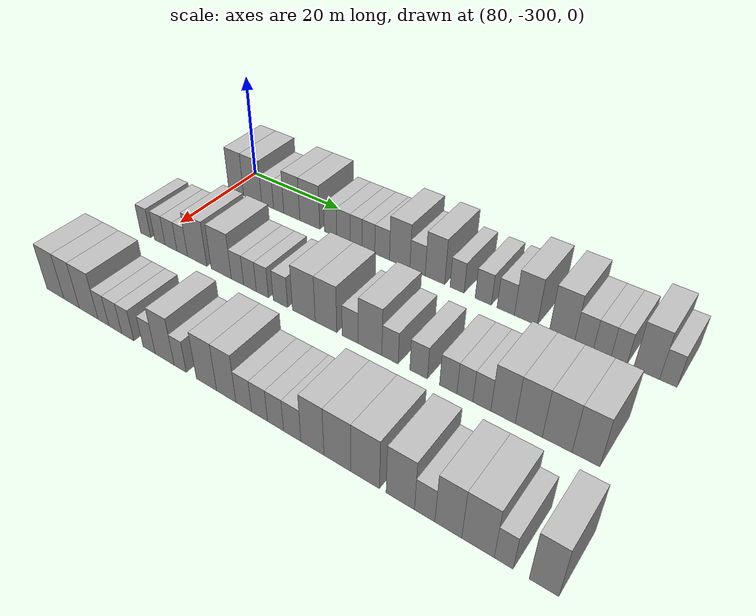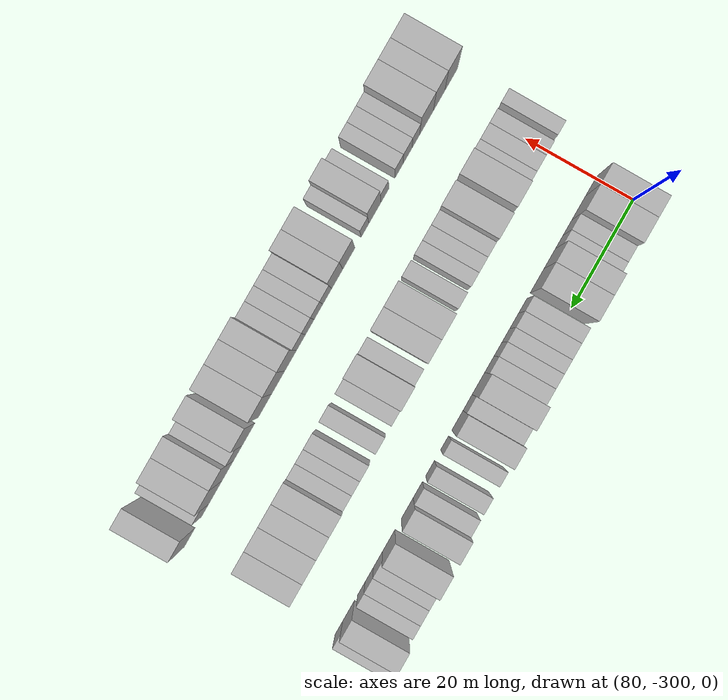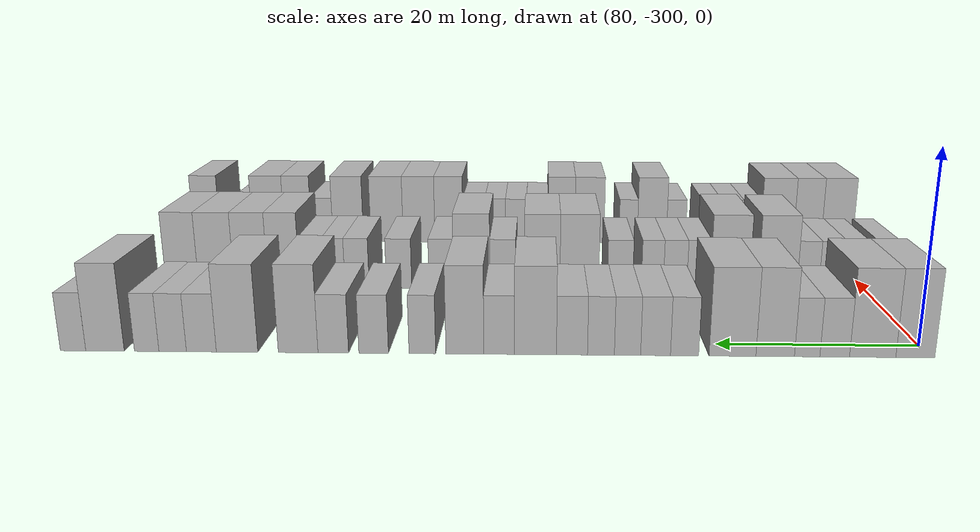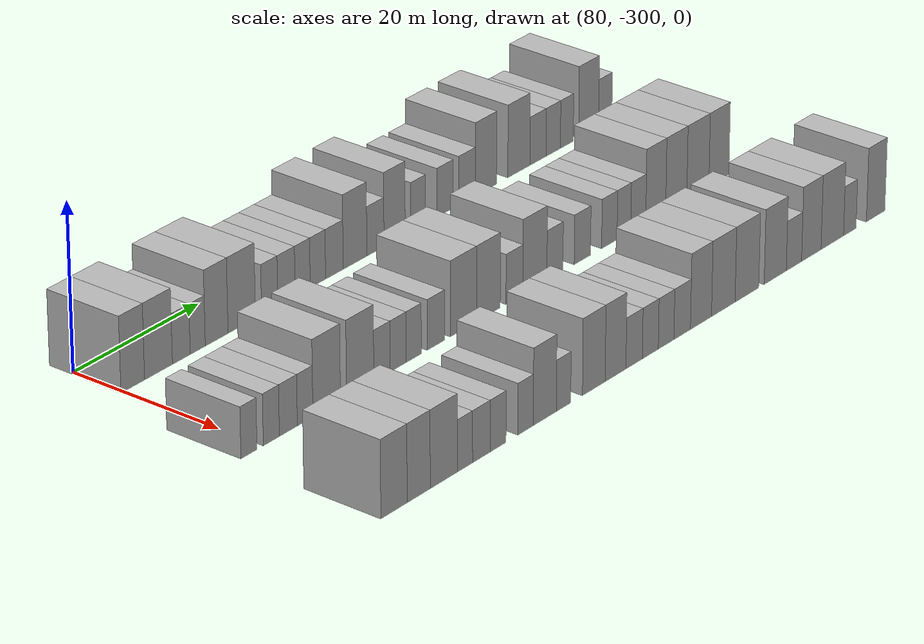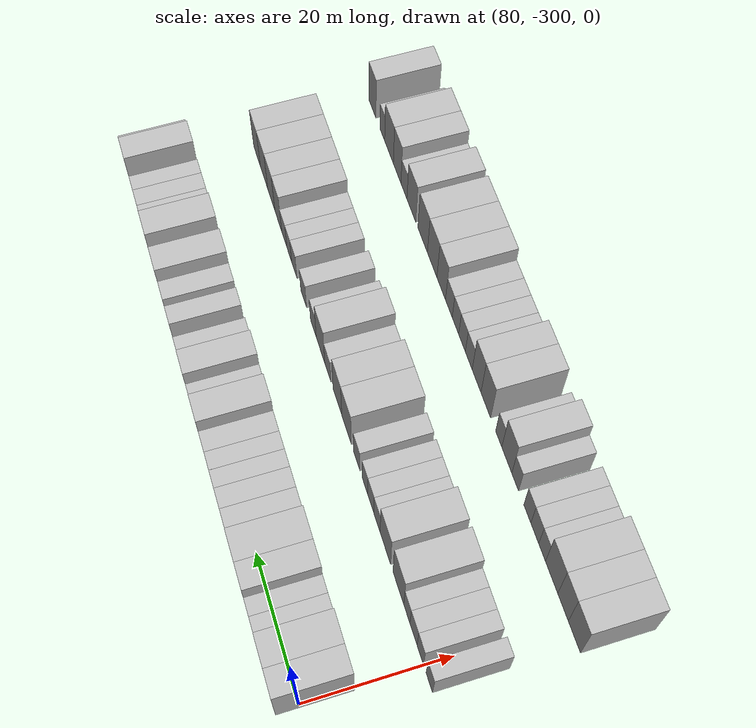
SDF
<sdf version="1.6">
 <world name="default">
  <model name="building_556">
   <static>1</static>
   <pose>82.0000 -298.5609 0 0.000000 0.000000 0.000000</pose>
   <link name="link">
    <pose>0 0 4.50 0 0 0</pose>
    <collision name="collision"><geometry><box><size>10.0000 3.7217 9.0000</size></box></geometry></collision>
    <visual name="visual">
     <cast_shadows>0</cast_shadows>
     <geometry><box><size>10.0000 3.7217 9.0000</size></box></geometry>
     <material>
      <script>
       <uri>model://HANNAS_wall/materials/scripts</uri>
       <uri>model://HANNAS_wall/materials/textures</uri>
       <name>vrc/HANNAS_wall</name>
      </script>
     </material>
    </visual>
   </link>
  </model>
  <model name="building_557">
   <static>1</static>
   <pose>82.0000 -294.4918 0 0.000000 0.000000 0.000000</pose>
   <link name="link">
    <pose>0 0 4.50 0 0 0</pose>
    <collision name="collision"><geometry><box><size>10.0000 4.4165 9.0000</size></box></geometry></collision>
    <visual name="visual">
     <cast_shadows>0</cast_shadows>
     <geometry><box><size>10.0000 4.4165 9.0000</size></box></geometry>
     <material>
      <script>
       <uri>model://HANNAS_wall/materials/scripts</uri>
       <uri>model://HANNAS_wall/materials/textures</uri>
       <name>vrc/HANNAS_wall</name>
      </script>
     </material>
    </visual>
   </link>
  </model>
  <model name="building_558">
   <static>1</static>
   <pose>82.0000 -290.8653 0 0.000000 0.000000 0.000000</pose>
   <link name="link">
    <pose>0 0 3.00 0 0 0</pose>
    <collision name="collision"><geometry><box><size>10.0000 2.8366 6.0000</size></box></geometry></collision>
    <visual name="visual">
     <cast_shadows>0</cast_shadows>
     <geometry><box><size>10.0000 2.8366 6.0000</size></box></geometry>
     <material>
      <script>
       <uri>model://HANNAS_wall/materials/scripts</uri>
       <uri>model://HANNAS_wall/materials/textures</uri>
       <name>vrc/HANNAS_wall</name>
      </script>
     </material>
    </visual>
   </link>
  </model>
  <model name="building_559">
   <static>1</static>
   <pose>82.0000 -288.2322 0 0.000000 0.000000 0.000000</pose>
   <link name="link">
    <pose>0 0 3.00 0 0 0</pose>
    <collision name="collision"><geometry><box><size>10.0000 2.4296 6.0000</size></box></geometry></collision>
    <visual name="visual">
     <cast_shadows>0</cast_shadows>
     <geometry><box><size>10.0000 2.4296 6.0000</size></box></geometry>
     <material>
      <script>
       <uri>model://HANNAS_wall/materials/scripts</uri>
       <uri>model://HANNAS_wall/materials/textures</uri>
       <name>vrc/HANNAS_wall</name>
      </script>
     </material>
    </visual>
   </link>
  </model>
  <model name="building_560">
   <static>1</static>
   <pose>82.0000 -285.1716 0 0.000000 0.000000 0.000000</pose>
   <link name="link">
    <pose>0 0 4.50 0 0 0</pose>
    <collision name="collision"><geometry><box><size>10.0000 3.6916 9.0000</size></box></geometry></collision>
    <visual name="visual">
     <cast_shadows>0</cast_shadows>
     <geometry><box><size>10.0000 3.6916 9.0000</size></box></geometry>
     <material>
      <script>
       <uri>model://HANNAS_wall/materials/scripts</uri>
       <uri>model://HANNAS_wall/materials/textures</uri>
       <name>vrc/HANNAS_wall</name>
      </script>
     </material>
    </visual>
   </link>
  </model>
  <model name="building_561">
   <static>1</static>
   <pose>82.0000 -281.0784 0 0.000000 0.000000 0.000000</pose>
   <link name="link">
    <pose>0 0 4.50 0 0 0</pose>
    <collision name="collision"><geometry><box><size>10.0000 4.4946 9.0000</size></box></geometry></collision>
    <visual name="visual">
     <cast_shadows>0</cast_shadows>
     <geometry><box><size>10.0000 4.4946 9.0000</size></box></geometry>
     <material>
      <script>
       <uri>model://HANNAS_wall/materials/scripts</uri>
       <uri>model://HANNAS_wall/materials/textures</uri>
       <name>vrc/HANNAS_wall</name>
      </script>
     </material>
    </visual>
   </link>
  </model>
  <model name="building_562">
   <static>1</static>
   <pose>82.0000 -276.4734 0 0.000000 0.000000 0.000000</pose>
   <link name="link">
    <pose>0 0 3.00 0 0 0</pose>
    <collision name="collision"><geometry><box><size>10.0000 2.7154 6.0000</size></box></geometry></collision>
    <visual name="visual">
     <cast_shadows>0</cast_shadows>
     <geometry><box><size>10.0000 2.7154 6.0000</size></box></geometry>
     <material>
      <script>
       <uri>model://HANNAS_wall/materials/scripts</uri>
       <uri>model://HANNAS_wall/materials/textures</uri>
       <name>vrc/HANNAS_wall</name>
      </script>
     </material>
    </visual>
   </link>
  </model>
  <model name="building_563">
   <static>1</static>
   <pose>82.0000 -273.6795 0 0.000000 0.000000 0.000000</pose>
   <link name="link">
    <pose>0 0 3.00 0 0 0</pose>
    <collision name="collision"><geometry><box><size>10.0000 2.8725 6.0000</size></box></geometry></collision>
    <visual name="visual">
     <cast_shadows>0</cast_shadows>
     <geometry><box><size>10.0000 2.8725 6.0000</size></box></geometry>
     <material>
      <script>
       <uri>model://HANNAS_wall/materials/scripts</uri>
       <uri>model://HANNAS_wall/materials/textures</uri>
       <name>vrc/HANNAS_wall</name>
      </script>
     </material>
    </visual>
   </link>
  </model>
  <model name="building_564">
   <static>1</static>
   <pose>82.0000 -270.9781 0 0.000000 0.000000 0.000000</pose>
   <link name="link">
    <pose>0 0 3.00 0 0 0</pose>
    <collision name="collision"><geometry><box><size>10.0000 2.5303 6.0000</size></box></geometry></collision>
    <visual name="visual">
     <cast_shadows>0</cast_shadows>
     <geometry><box><size>10.0000 2.5303 6.0000</size></box></geometry>
     <material>
      <script>
       <uri>model://HANNAS_wall/materials/scripts</uri>
       <uri>model://HANNAS_wall/materials/textures</uri>
       <name>vrc/HANNAS_wall</name>
      </script>
     </material>
    </visual>
   </link>
  </model>
  <model name="building_565">
   <static>1</static>
   <pose>82.0000 -268.4145 0 0.000000 0.000000 0.000000</pose>
   <link name="link">
    <pose>0 0 3.00 0 0 0</pose>
    <collision name="collision"><geometry><box><size>10.0000 2.5968 6.0000</size></box></geometry></collision>
    <visual name="visual">
     <cast_shadows>0</cast_shadows>
     <geometry><box><size>10.0000 2.5968 6.0000</size></box></geometry>
     <material>
      <script>
       <uri>model://HANNAS_wall/materials/scripts</uri>
       <uri>model://HANNAS_wall/materials/textures</uri>
       <name>vrc/HANNAS_wall</name>
      </script>
     </material>
    </visual>
   </link>
  </model>
  <model name="building_566">
   <static>1</static>
   <pose>82.0000 -265.6188 0 0.000000 0.000000 0.000000</pose>
   <link name="link">
    <pose>0 0 3.00 0 0 0</pose>
    <collision name="collision"><geometry><box><size>10.0000 2.9946 6.0000</size></box></geometry></collision>
    <visual name="visual">
     <cast_shadows>0</cast_shadows>
     <geometry><box><size>10.0000 2.9946 6.0000</size></box></geometry>
     <material>
      <script>
       <uri>model://HANNAS_wall/materials/scripts</uri>
       <uri>model://HANNAS_wall/materials/textures</uri>
       <name>vrc/HANNAS_wall</name>
      </script>
     </material>
    </visual>
   </link>
  </model>
  <model name="building_567">
   <static>1</static>
   <pose>82.0000 -262.0920 0 0.000000 0.000000 0.000000</pose>
   <link name="link">
    <pose>0 0 4.50 0 0 0</pose>
    <collision name="collision"><geometry><box><size>10.0000 4.0590 9.0000</size></box></geometry></collision>
    <visual name="visual">
     <cast_shadows>0</cast_shadows>
     <geometry><box><size>10.0000 4.0590 9.0000</size></box></geometry>
     <material>
      <script>
       <uri>model://HANNAS_wall/materials/scripts</uri>
       <uri>model://HANNAS_wall/materials/textures</uri>
       <name>vrc/HANNAS_wall</name>
      </script>
     </material>
    </visual>
   </link>
  </model>
  <model name="building_568">
   <static>1</static>
   <pose>82.0000 -258.5813 0 0.000000 0.000000 0.000000</pose>
   <link name="link">
    <pose>0 0 3.00 0 0 0</pose>
    <collision name="collision"><geometry><box><size>10.0000 2.9624 6.0000</size></box></geometry></collision>
    <visual name="visual">
     <cast_shadows>0</cast_shadows>
     <geometry><box><size>10.0000 2.9624 6.0000</size></box></geometry>
     <material>
      <script>
       <uri>model://HANNAS_wall/materials/scripts</uri>
       <uri>model://HANNAS_wall/materials/textures</uri>
       <name>vrc/HANNAS_wall</name>
      </script>
     </material>
    </visual>
   </link>
  </model>
  <model name="building_569">
   <static>1</static>
   <pose>82.0000 -255.2569 0 0.000000 0.000000 0.000000</pose>
   <link name="link">
    <pose>0 0 4.50 0 0 0</pose>
    <collision name="collision"><geometry><box><size>10.0000 3.6865 9.0000</size></box></geometry></collision>
    <visual name="visual">
     <cast_shadows>0</cast_shadows>
     <geometry><box><size>10.0000 3.6865 9.0000</size></box></geometry>
     <material>
      <script>
       <uri>model://HANNAS_wall/materials/scripts</uri>
       <uri>model://HANNAS_wall/materials/textures</uri>
       <name>vrc/HANNAS_wall</name>
      </script>
     </material>
    </visual>
   </link>
  </model>
  <model name="building_570">
   <static>1</static>
   <pose>82.0000 -251.1201 0 0.000000 0.000000 0.000000</pose>
   <link name="link">
    <pose>0 0 3.00 0 0 0</pose>
    <collision name="collision"><geometry><box><size>10.0000 2.5869 6.0000</size></box></geometry></collision>
    <visual name="visual">
     <cast_shadows>0</cast_shadows>
     <geometry><box><size>10.0000 2.5869 6.0000</size></box></geometry>
     <material>
      <script>
       <uri>model://HANNAS_wall/materials/scripts</uri>
       <uri>model://HANNAS_wall/materials/textures</uri>
       <name>vrc/HANNAS_wall</name>
      </script>
     </material>
    </visual>
   </link>
  </model>
  <model name="building_571">
   <static>1</static>
   <pose>82.0000 -246.3840 0 0.000000 0.000000 0.000000</pose>
   <link name="link">
    <pose>0 0 3.00 0 0 0</pose>
    <collision name="collision"><geometry><box><size>10.0000 2.8853 6.0000</size></box></geometry></collision>
    <visual name="visual">
     <cast_shadows>0</cast_shadows>
     <geometry><box><size>10.0000 2.8853 6.0000</size></box></geometry>
     <material>
      <script>
       <uri>model://HANNAS_wall/materials/scripts</uri>
       <uri>model://HANNAS_wall/materials/textures</uri>
       <name>vrc/HANNAS_wall</name>
      </script>
     </material>
    </visual>
   </link>
  </model>
  <model name="building_572">
   <static>1</static>
   <pose>82.0000 -242.4481 0 0.000000 0.000000 0.000000</pose>
   <link name="link">
    <pose>0 0 3.00 0 0 0</pose>
    <collision name="collision"><geometry><box><size>10.0000 2.9866 6.0000</size></box></geometry></collision>
    <visual name="visual">
     <cast_shadows>0</cast_shadows>
     <geometry><box><size>10.0000 2.9866 6.0000</size></box></geometry>
     <material>
      <script>
       <uri>model://HANNAS_wall/materials/scripts</uri>
       <uri>model://HANNAS_wall/materials/textures</uri>
       <name>vrc/HANNAS_wall</name>
      </script>
     </material>
    </visual>
   </link>
  </model>
  <model name="building_573">
   <static>1</static>
   <pose>82.0000 -239.0169 0 0.000000 0.000000 0.000000</pose>
   <link name="link">
    <pose>0 0 4.50 0 0 0</pose>
    <collision name="collision"><geometry><box><size>10.0000 3.8756 9.0000</size></box></geometry></collision>
    <visual name="visual">
     <cast_shadows>0</cast_shadows>
     <geometry><box><size>10.0000 3.8756 9.0000</size></box></geometry>
     <material>
      <script>
       <uri>model://HANNAS_wall/materials/scripts</uri>
       <uri>model://HANNAS_wall/materials/textures</uri>
       <name>vrc/HANNAS_wall</name>
      </script>
     </material>
    </visual>
   </link>
  </model>
  <model name="building_574">
   <static>1</static>
   <pose>82.0000 -233.0462 0 0.000000 0.000000 0.000000</pose>
   <link name="link">
    <pose>0 0 4.50 0 0 0</pose>
    <collision name="collision"><geometry><box><size>10.0000 4.0659 9.0000</size></box></geometry></collision>
    <visual name="visual">
     <cast_shadows>0</cast_shadows>
     <geometry><box><size>10.0000 4.0659 9.0000</size></box></geometry>
     <material>
      <script>
       <uri>model://HANNAS_wall/materials/scripts</uri>
       <uri>model://HANNAS_wall/materials/textures</uri>
       <name>vrc/HANNAS_wall</name>
      </script>
     </material>
    </visual>
   </link>
  </model>
  <model name="building_575">
   <static>1</static>
   <pose>82.0000 -229.5457 0 0.000000 0.000000 0.000000</pose>
   <link name="link">
    <pose>0 0 3.00 0 0 0</pose>
    <collision name="collision"><geometry><box><size>10.0000 2.9351 6.0000</size></box></geometry></collision>
    <visual name="visual">
     <cast_shadows>0</cast_shadows>
     <geometry><box><size>10.0000 2.9351 6.0000</size></box></geometry>
     <material>
      <script>
       <uri>model://HANNAS_wall/materials/scripts</uri>
       <uri>model://HANNAS_wall/materials/textures</uri>
       <name>vrc/HANNAS_wall</name>
      </script>
     </material>
    </visual>
   </link>
  </model>
  <model name="building_576">
   <static>1</static>
   <pose>82.0000 -226.7279 0 0.000000 0.000000 0.000000</pose>
   <link name="link">
    <pose>0 0 3.00 0 0 0</pose>
    <collision name="collision"><geometry><box><size>10.0000 2.7005 6.0000</size></box></geometry></collision>
    <visual name="visual">
     <cast_shadows>0</cast_shadows>
     <geometry><box><size>10.0000 2.7005 6.0000</size></box></geometry>
     <material>
      <script>
       <uri>model://HANNAS_wall/materials/scripts</uri>
       <uri>model://HANNAS_wall/materials/textures</uri>
       <name>vrc/HANNAS_wall</name>
      </script>
     </material>
    </visual>
   </link>
  </model>
  <model name="building_577">
   <static>1</static>
   <pose>82.0000 -224.1729 0 0.000000 0.000000 0.000000</pose>
   <link name="link">
    <pose>0 0 3.00 0 0 0</pose>
    <collision name="collision"><geometry><box><size>10.0000 2.4095 6.0000</size></box></geometry></collision>
    <visual name="visual">
     <cast_shadows>0</cast_shadows>
     <geometry><box><size>10.0000 2.4095 6.0000</size></box></geometry>
     <material>
      <script>
       <uri>model://HANNAS_wall/materials/scripts</uri>
       <uri>model://HANNAS_wall/materials/textures</uri>
       <name>vrc/HANNAS_wall</name>
      </script>
     </material>
    </visual>
   </link>
  </model>
  <model name="building_578">
   <static>1</static>
   <pose>82.0000 -220.0727 0 0.000000 0.000000 0.000000</pose>
   <link name="link">
    <pose>0 0 4.50 0 0 0</pose>
    <collision name="collision"><geometry><box><size>10.0000 3.7911 9.0000</size></box></geometry></collision>
    <visual name="visual">
     <cast_shadows>0</cast_shadows>
     <geometry><box><size>10.0000 3.7911 9.0000</size></box></geometry>
     <material>
      <script>
       <uri>model://HANNAS_wall/materials/scripts</uri>
       <uri>model://HANNAS_wall/materials/textures</uri>
       <name>vrc/HANNAS_wall</name>
      </script>
     </material>
    </visual>
   </link>
  </model>
  <model name="building_579">
   <static>1</static>
   <pose>82.0000 -216.9248 0 0.000000 0.000000 0.000000</pose>
   <link name="link">
    <pose>0 0 3.00 0 0 0</pose>
    <collision name="collision"><geometry><box><size>10.0000 2.5046 6.0000</size></box></geometry></collision>
    <visual name="visual">
     <cast_shadows>0</cast_shadows>
     <geometry><box><size>10.0000 2.5046 6.0000</size></box></geometry>
     <material>
      <script>
       <uri>model://HANNAS_wall/materials/scripts</uri>
       <uri>model://HANNAS_wall/materials/textures</uri>
       <name>vrc/HANNAS_wall</name>
      </script>
     </material>
    </visual>
   </link>
  </model>
  <model name="building_738">
   <static>1</static>
   <pose>101.0000 -302.2149 0 0.000000 0.000000 0.000000</pose>
   <link name="link">
    <pose>0 0 3.00 0 0 0</pose>
    <collision name="collision"><geometry><box><size>10.0000 2.5185 6.0000</size></box></geometry></collision>
    <visual name="visual">
     <cast_shadows>0</cast_shadows>
     <geometry><box><size>10.0000 2.5185 6.0000</size></box></geometry>
     <material>
      <script>
       <uri>model://HANNAS_wall/materials/scripts</uri>
       <uri>model://HANNAS_wall/materials/textures</uri>
       <name>vrc/HANNAS_wall</name>
      </script>
     </material>
    </visual>
   </link>
  </model>
  <model name="building_739">
   <static>1</static>
   <pose>101.0000 -298.6846 0 0.000000 0.000000 0.000000</pose>
   <link name="link">
    <pose>0 0 3.00 0 0 0</pose>
    <collision name="collision"><geometry><box><size>10.0000 2.5420 6.0000</size></box></geometry></collision>
    <visual name="visual">
     <cast_shadows>0</cast_shadows>
     <geometry><box><size>10.0000 2.5420 6.0000</size></box></geometry>
     <material>
      <script>
       <uri>model://HANNAS_wall/materials/scripts</uri>
       <uri>model://HANNAS_wall/materials/textures</uri>
       <name>vrc/HANNAS_wall</name>
      </script>
     </material>
    </visual>
   </link>
  </model>
  <model name="building_740">
   <static>1</static>
   <pose>101.0000 -295.9826 0 0.000000 0.000000 0.000000</pose>
   <link name="link">
    <pose>0 0 3.00 0 0 0</pose>
    <collision name="collision"><geometry><box><size>10.0000 2.8621 6.0000</size></box></geometry></collision>
    <visual name="visual">
     <cast_shadows>0</cast_shadows>
     <geometry><box><size>10.0000 2.8621 6.0000</size></box></geometry>
     <material>
      <script>
       <uri>model://HANNAS_wall/materials/scripts</uri>
       <uri>model://HANNAS_wall/materials/textures</uri>
       <name>vrc/HANNAS_wall</name>
      </script>
     </material>
    </visual>
   </link>
  </model>
  <model name="building_741">
   <static>1</static>
   <pose>101.0000 -293.3038 0 0.000000 0.000000 0.000000</pose>
   <link name="link">
    <pose>0 0 3.00 0 0 0</pose>
    <collision name="collision"><geometry><box><size>10.0000 2.4953 6.0000</size></box></geometry></collision>
    <visual name="visual">
     <cast_shadows>0</cast_shadows>
     <geometry><box><size>10.0000 2.4953 6.0000</size></box></geometry>
     <material>
      <script>
       <uri>model://HANNAS_wall/materials/scripts</uri>
       <uri>model://HANNAS_wall/materials/textures</uri>
       <name>vrc/HANNAS_wall</name>
      </script>
     </material>
    </visual>
   </link>
  </model>
  <model name="building_742">
   <static>1</static>
   <pose>101.0000 -289.8233 0 0.000000 0.000000 0.000000</pose>
   <link name="link">
    <pose>0 0 4.50 0 0 0</pose>
    <collision name="collision"><geometry><box><size>10.0000 4.4658 9.0000</size></box></geometry></collision>
    <visual name="visual">
     <cast_shadows>0</cast_shadows>
     <geometry><box><size>10.0000 4.4658 9.0000</size></box></geometry>
     <material>
      <script>
       <uri>model://HANNAS_wall/materials/scripts</uri>
       <uri>model://HANNAS_wall/materials/textures</uri>
       <name>vrc/HANNAS_wall</name>
      </script>
     </material>
    </visual>
   </link>
  </model>
  <model name="building_743">
   <static>1</static>
   <pose>101.0000 -284.3532 0 0.000000 0.000000 0.000000</pose>
   <link name="link">
    <pose>0 0 4.50 0 0 0</pose>
    <collision name="collision"><geometry><box><size>10.0000 4.4744 9.0000</size></box></geometry></collision>
    <visual name="visual">
     <cast_shadows>0</cast_shadows>
     <geometry><box><size>10.0000 4.4744 9.0000</size></box></geometry>
     <material>
      <script>
       <uri>model://HANNAS_wall/materials/scripts</uri>
       <uri>model://HANNAS_wall/materials/textures</uri>
       <name>vrc/HANNAS_wall</name>
      </script>
     </material>
    </visual>
   </link>
  </model>
  <model name="building_744">
   <static>1</static>
   <pose>101.0000 -280.7788 0 0.000000 0.000000 0.000000</pose>
   <link name="link">
    <pose>0 0 3.00 0 0 0</pose>
    <collision name="collision"><geometry><box><size>10.0000 2.6743 6.0000</size></box></geometry></collision>
    <visual name="visual">
     <cast_shadows>0</cast_shadows>
     <geometry><box><size>10.0000 2.6743 6.0000</size></box></geometry>
     <material>
      <script>
       <uri>model://HANNAS_wall/materials/scripts</uri>
       <uri>model://HANNAS_wall/materials/textures</uri>
       <name>vrc/HANNAS_wall</name>
      </script>
     </material>
    </visual>
   </link>
  </model>
  <model name="building_745">
   <static>1</static>
   <pose>101.0000 -278.0914 0 0.000000 0.000000 0.000000</pose>
   <link name="link">
    <pose>0 0 3.00 0 0 0</pose>
    <collision name="collision"><geometry><box><size>10.0000 2.7004 6.0000</size></box></geometry></collision>
    <visual name="visual">
     <cast_shadows>0</cast_shadows>
     <geometry><box><size>10.0000 2.7004 6.0000</size></box></geometry>
     <material>
      <script>
       <uri>model://HANNAS_wall/materials/scripts</uri>
       <uri>model://HANNAS_wall/materials/textures</uri>
       <name>vrc/HANNAS_wall</name>
      </script>
     </material>
    </visual>
   </link>
  </model>
  <model name="building_746">
   <static>1</static>
   <pose>101.0000 -275.4798 0 0.000000 0.000000 0.000000</pose>
   <link name="link">
    <pose>0 0 3.00 0 0 0</pose>
    <collision name="collision"><geometry><box><size>10.0000 2.5230 6.0000</size></box></geometry></collision>
    <visual name="visual">
     <cast_shadows>0</cast_shadows>
     <geometry><box><size>10.0000 2.5230 6.0000</size></box></geometry>
     <material>
      <script>
       <uri>model://HANNAS_wall/materials/scripts</uri>
       <uri>model://HANNAS_wall/materials/textures</uri>
       <name>vrc/HANNAS_wall</name>
      </script>
     </material>
    </visual>
   </link>
  </model>
  <model name="building_747">
   <static>1</static>
   <pose>101.0000 -271.7638 0 0.000000 0.000000 0.000000</pose>
   <link name="link">
    <pose>0 0 3.00 0 0 0</pose>
    <collision name="collision"><geometry><box><size>10.0000 2.9088 6.0000</size></box></geometry></collision>
    <visual name="visual">
     <cast_shadows>0</cast_shadows>
     <geometry><box><size>10.0000 2.9088 6.0000</size></box></geometry>
     <material>
      <script>
       <uri>model://HANNAS_wall/materials/scripts</uri>
       <uri>model://HANNAS_wall/materials/textures</uri>
       <name>vrc/HANNAS_wall</name>
      </script>
     </material>
    </visual>
   </link>
  </model>
  <model name="building_748">
   <static>1</static>
   <pose>101.0000 -267.0732 0 0.000000 0.000000 0.000000</pose>
   <link name="link">
    <pose>0 0 4.50 0 0 0</pose>
    <collision name="collision"><geometry><box><size>10.0000 4.4724 9.0000</size></box></geometry></collision>
    <visual name="visual">
     <cast_shadows>0</cast_shadows>
     <geometry><box><size>10.0000 4.4724 9.0000</size></box></geometry>
     <material>
      <script>
       <uri>model://HANNAS_wall/materials/scripts</uri>
       <uri>model://HANNAS_wall/materials/textures</uri>
       <name>vrc/HANNAS_wall</name>
      </script>
     </material>
    </visual>
   </link>
  </model>
  <model name="building_749">
   <static>1</static>
   <pose>101.0000 -262.7845 0 0.000000 0.000000 0.000000</pose>
   <link name="link">
    <pose>0 0 4.50 0 0 0</pose>
    <collision name="collision"><geometry><box><size>10.0000 4.1051 9.0000</size></box></geometry></collision>
    <visual name="visual">
     <cast_shadows>0</cast_shadows>
     <geometry><box><size>10.0000 4.1051 9.0000</size></box></geometry>
     <material>
      <script>
       <uri>model://HANNAS_wall/materials/scripts</uri>
       <uri>model://HANNAS_wall/materials/textures</uri>
       <name>vrc/HANNAS_wall</name>
      </script>
     </material>
    </visual>
   </link>
  </model>
  <model name="building_750">
   <static>1</static>
   <pose>101.0000 -258.2395 0 0.000000 0.000000 0.000000</pose>
   <link name="link">
    <pose>0 0 3.00 0 0 0</pose>
    <collision name="collision"><geometry><box><size>10.0000 2.9850 6.0000</size></box></geometry></collision>
    <visual name="visual">
     <cast_shadows>0</cast_shadows>
     <geometry><box><size>10.0000 2.9850 6.0000</size></box></geometry>
     <material>
      <script>
       <uri>model://HANNAS_wall/materials/scripts</uri>
       <uri>model://HANNAS_wall/materials/textures</uri>
       <name>vrc/HANNAS_wall</name>
      </script>
     </material>
    </visual>
   </link>
  </model>
  <model name="building_751">
   <static>1</static>
   <pose>101.0000 -254.6410 0 0.000000 0.000000 0.000000</pose>
   <link name="link">
    <pose>0 0 4.50 0 0 0</pose>
    <collision name="collision"><geometry><box><size>10.0000 4.2121 9.0000</size></box></geometry></collision>
    <visual name="visual">
     <cast_shadows>0</cast_shadows>
     <geometry><box><size>10.0000 4.2121 9.0000</size></box></geometry>
     <material>
      <script>
       <uri>model://HANNAS_wall/materials/scripts</uri>
       <uri>model://HANNAS_wall/materials/textures</uri>
       <name>vrc/HANNAS_wall</name>
      </script>
     </material>
    </visual>
   </link>
  </model>
  <model name="building_752">
   <static>1</static>
   <pose>101.0000 -251.1105 0 0.000000 0.000000 0.000000</pose>
   <link name="link">
    <pose>0 0 3.00 0 0 0</pose>
    <collision name="collision"><geometry><box><size>10.0000 2.8488 6.0000</size></box></geometry></collision>
    <visual name="visual">
     <cast_shadows>0</cast_shadows>
     <geometry><box><size>10.0000 2.8488 6.0000</size></box></geometry>
     <material>
      <script>
       <uri>model://HANNAS_wall/materials/scripts</uri>
       <uri>model://HANNAS_wall/materials/textures</uri>
       <name>vrc/HANNAS_wall</name>
      </script>
     </material>
    </visual>
   </link>
  </model>
  <model name="building_753">
   <static>1</static>
   <pose>101.0000 -246.2142 0 0.000000 0.000000 0.000000</pose>
   <link name="link">
    <pose>0 0 3.00 0 0 0</pose>
    <collision name="collision"><geometry><box><size>10.0000 2.9437 6.0000</size></box></geometry></collision>
    <visual name="visual">
     <cast_shadows>0</cast_shadows>
     <geometry><box><size>10.0000 2.9437 6.0000</size></box></geometry>
     <material>
      <script>
       <uri>model://HANNAS_wall/materials/scripts</uri>
       <uri>model://HANNAS_wall/materials/textures</uri>
       <name>vrc/HANNAS_wall</name>
      </script>
     </material>
    </visual>
   </link>
  </model>
  <model name="building_754">
   <static>1</static>
   <pose>101.0000 -241.3363 0 0.000000 0.000000 0.000000</pose>
   <link name="link">
    <pose>0 0 3.00 0 0 0</pose>
    <collision name="collision"><geometry><box><size>10.0000 2.8121 6.0000</size></box></geometry></collision>
    <visual name="visual">
     <cast_shadows>0</cast_shadows>
     <geometry><box><size>10.0000 2.8121 6.0000</size></box></geometry>
     <material>
      <script>
       <uri>model://HANNAS_wall/materials/scripts</uri>
       <uri>model://HANNAS_wall/materials/textures</uri>
       <name>vrc/HANNAS_wall</name>
      </script>
     </material>
    </visual>
   </link>
  </model>
  <model name="building_755">
   <static>1</static>
   <pose>101.0000 -238.6731 0 0.000000 0.000000 0.000000</pose>
   <link name="link">
    <pose>0 0 3.00 0 0 0</pose>
    <collision name="collision"><geometry><box><size>10.0000 2.5142 6.0000</size></box></geometry></collision>
    <visual name="visual">
     <cast_shadows>0</cast_shadows>
     <geometry><box><size>10.0000 2.5142 6.0000</size></box></geometry>
     <material>
      <script>
       <uri>model://HANNAS_wall/materials/scripts</uri>
       <uri>model://HANNAS_wall/materials/textures</uri>
       <name>vrc/HANNAS_wall</name>
      </script>
     </material>
    </visual>
   </link>
  </model>
  <model name="building_756">
   <static>1</static>
   <pose>101.0000 -236.0362 0 0.000000 0.000000 0.000000</pose>
   <link name="link">
    <pose>0 0 3.00 0 0 0</pose>
    <collision name="collision"><geometry><box><size>10.0000 2.7598 6.0000</size></box></geometry></collision>
    <visual name="visual">
     <cast_shadows>0</cast_shadows>
     <geometry><box><size>10.0000 2.7598 6.0000</size></box></geometry>
     <material>
      <script>
       <uri>model://HANNAS_wall/materials/scripts</uri>
       <uri>model://HANNAS_wall/materials/textures</uri>
       <name>vrc/HANNAS_wall</name>
      </script>
     </material>
    </visual>
   </link>
  </model>
  <model name="building_757">
   <static>1</static>
   <pose>101.0000 -232.8053 0 0.000000 0.000000 0.000000</pose>
   <link name="link">
    <pose>0 0 4.50 0 0 0</pose>
    <collision name="collision"><geometry><box><size>10.0000 3.7018 9.0000</size></box></geometry></collision>
    <visual name="visual">
     <cast_shadows>0</cast_shadows>
     <geometry><box><size>10.0000 3.7018 9.0000</size></box></geometry>
     <material>
      <script>
       <uri>model://HANNAS_wall/materials/scripts</uri>
       <uri>model://HANNAS_wall/materials/textures</uri>
       <name>vrc/HANNAS_wall</name>
      </script>
     </material>
    </visual>
   </link>
  </model>
  <model name="building_758">
   <static>1</static>
   <pose>101.0000 -228.9825 0 0.000000 0.000000 0.000000</pose>
   <link name="link">
    <pose>0 0 4.50 0 0 0</pose>
    <collision name="collision"><geometry><box><size>10.0000 3.9438 9.0000</size></box></geometry></collision>
    <visual name="visual">
     <cast_shadows>0</cast_shadows>
     <geometry><box><size>10.0000 3.9438 9.0000</size></box></geometry>
     <material>
      <script>
       <uri>model://HANNAS_wall/materials/scripts</uri>
       <uri>model://HANNAS_wall/materials/textures</uri>
       <name>vrc/HANNAS_wall</name>
      </script>
     </material>
    </visual>
   </link>
  </model>
  <model name="building_759">
   <static>1</static>
   <pose>101.0000 -224.9242 0 0.000000 0.000000 0.000000</pose>
   <link name="link">
    <pose>0 0 4.50 0 0 0</pose>
    <collision name="collision"><geometry><box><size>10.0000 4.1730 9.0000</size></box></geometry></collision>
    <visual name="visual">
     <cast_shadows>0</cast_shadows>
     <geometry><box><size>10.0000 4.1730 9.0000</size></box></geometry>
     <material>
      <script>
       <uri>model://HANNAS_wall/materials/scripts</uri>
       <uri>model://HANNAS_wall/materials/textures</uri>
       <name>vrc/HANNAS_wall</name>
      </script>
     </material>
    </visual>
   </link>
  </model>
  <model name="building_760">
   <static>1</static>
   <pose>101.0000 -220.9334 0 0.000000 0.000000 0.000000</pose>
   <link name="link">
    <pose>0 0 4.50 0 0 0</pose>
    <collision name="collision"><geometry><box><size>10.0000 3.8085 9.0000</size></box></geometry></collision>
    <visual name="visual">
     <cast_shadows>0</cast_shadows>
     <geometry><box><size>10.0000 3.8085 9.0000</size></box></geometry>
     <material>
      <script>
       <uri>model://HANNAS_wall/materials/scripts</uri>
       <uri>model://HANNAS_wall/materials/textures</uri>
       <name>vrc/HANNAS_wall</name>
      </script>
     </material>
    </visual>
   </link>
  </model>
  <model name="building_902">
   <static>1</static>
   <pose>120.0000 -302.1840 0 0.000000 0.000000 0.000000</pose>
   <link name="link">
    <pose>0 0 4.50 0 0 0</pose>
    <collision name="collision"><geometry><box><size>10.0000 4.1818 9.0000</size></box></geometry></collision>
    <visual name="visual">
     <cast_shadows>0</cast_shadows>
     <geometry><box><size>10.0000 4.1818 9.0000</size></box></geometry>
     <material>
      <script>
       <uri>model://HANNAS_wall/materials/scripts</uri>
       <uri>model://HANNAS_wall/materials/textures</uri>
       <name>vrc/HANNAS_wall</name>
      </script>
     </material>
    </visual>
   </link>
  </model>
  <model name="building_903">
   <static>1</static>
   <pose>120.0000 -298.2489 0 0.000000 0.000000 0.000000</pose>
   <link name="link">
    <pose>0 0 4.50 0 0 0</pose>
    <collision name="collision"><geometry><box><size>10.0000 3.6884 9.0000</size></box></geometry></collision>
    <visual name="visual">
     <cast_shadows>0</cast_shadows>
     <geometry><box><size>10.0000 3.6884 9.0000</size></box></geometry>
     <material>
      <script>
       <uri>model://HANNAS_wall/materials/scripts</uri>
       <uri>model://HANNAS_wall/materials/textures</uri>
       <name>vrc/HANNAS_wall</name>
      </script>
     </material>
    </visual>
   </link>
  </model>
  <model name="building_904">
   <static>1</static>
   <pose>120.0000 -294.2073 0 0.000000 0.000000 0.000000</pose>
   <link name="link">
    <pose>0 0 4.50 0 0 0</pose>
    <collision name="collision"><geometry><box><size>10.0000 4.3949 9.0000</size></box></geometry></collision>
    <visual name="visual">
     <cast_shadows>0</cast_shadows>
     <geometry><box><size>10.0000 4.3949 9.0000</size></box></geometry>
     <material>
      <script>
       <uri>model://HANNAS_wall/materials/scripts</uri>
       <uri>model://HANNAS_wall/materials/textures</uri>
       <name>vrc/HANNAS_wall</name>
      </script>
     </material>
    </visual>
   </link>
  </model>
  <model name="building_905">
   <static>1</static>
   <pose>120.0000 -290.7757 0 0.000000 0.000000 0.000000</pose>
   <link name="link">
    <pose>0 0 3.00 0 0 0</pose>
    <collision name="collision"><geometry><box><size>10.0000 2.4682 6.0000</size></box></geometry></collision>
    <visual name="visual">
     <cast_shadows>0</cast_shadows>
     <geometry><box><size>10.0000 2.4682 6.0000</size></box></geometry>
     <material>
      <script>
       <uri>model://HANNAS_wall/materials/scripts</uri>
       <uri>model://HANNAS_wall/materials/textures</uri>
       <name>vrc/HANNAS_wall</name>
      </script>
     </material>
    </visual>
   </link>
  </model>
  <model name="building_906">
   <static>1</static>
   <pose>120.0000 -288.1009 0 0.000000 0.000000 0.000000</pose>
   <link name="link">
    <pose>0 0 3.00 0 0 0</pose>
    <collision name="collision"><geometry><box><size>10.0000 2.8814 6.0000</size></box></geometry></collision>
    <visual name="visual">
     <cast_shadows>0</cast_shadows>
     <geometry><box><size>10.0000 2.8814 6.0000</size></box></geometry>
     <material>
      <script>
       <uri>model://HANNAS_wall/materials/scripts</uri>
       <uri>model://HANNAS_wall/materials/textures</uri>
       <name>vrc/HANNAS_wall</name>
      </script>
     </material>
    </visual>
   </link>
  </model>
  <model name="building_907">
   <static>1</static>
   <pose>120.0000 -285.3470 0 0.000000 0.000000 0.000000</pose>
   <link name="link">
    <pose>0 0 3.00 0 0 0</pose>
    <collision name="collision"><geometry><box><size>10.0000 2.6263 6.0000</size></box></geometry></collision>
    <visual name="visual">
     <cast_shadows>0</cast_shadows>
     <geometry><box><size>10.0000 2.6263 6.0000</size></box></geometry>
     <material>
      <script>
       <uri>model://HANNAS_wall/materials/scripts</uri>
       <uri>model://HANNAS_wall/materials/textures</uri>
       <name>vrc/HANNAS_wall</name>
      </script>
     </material>
    </visual>
   </link>
  </model>
  <model name="building_908">
   <static>1</static>
   <pose>120.0000 -280.7524 0 0.000000 0.000000 0.000000</pose>
   <link name="link">
    <pose>0 0 3.00 0 0 0</pose>
    <collision name="collision"><geometry><box><size>10.0000 2.5628 6.0000</size></box></geometry></collision>
    <visual name="visual">
     <cast_shadows>0</cast_shadows>
     <geometry><box><size>10.0000 2.5628 6.0000</size></box></geometry>
     <material>
      <script>
       <uri>model://HANNAS_wall/materials/scripts</uri>
       <uri>model://HANNAS_wall/materials/textures</uri>
       <name>vrc/HANNAS_wall</name>
      </script>
     </material>
    </visual>
   </link>
  </model>
  <model name="building_909">
   <static>1</static>
   <pose>120.0000 -277.5275 0 0.000000 0.000000 0.000000</pose>
   <link name="link">
    <pose>0 0 4.50 0 0 0</pose>
    <collision name="collision"><geometry><box><size>10.0000 3.8872 9.0000</size></box></geometry></collision>
    <visual name="visual">
     <cast_shadows>0</cast_shadows>
     <geometry><box><size>10.0000 3.8872 9.0000</size></box></geometry>
     <material>
      <script>
       <uri>model://HANNAS_wall/materials/scripts</uri>
       <uri>model://HANNAS_wall/materials/textures</uri>
       <name>vrc/HANNAS_wall</name>
      </script>
     </material>
    </visual>
   </link>
  </model>
  <model name="building_910">
   <static>1</static>
   <pose>120.0000 -274.3629 0 0.000000 0.000000 0.000000</pose>
   <link name="link">
    <pose>0 0 3.00 0 0 0</pose>
    <collision name="collision"><geometry><box><size>10.0000 2.4420 6.0000</size></box></geometry></collision>
    <visual name="visual">
     <cast_shadows>0</cast_shadows>
     <geometry><box><size>10.0000 2.4420 6.0000</size></box></geometry>
     <material>
      <script>
       <uri>model://HANNAS_wall/materials/scripts</uri>
       <uri>model://HANNAS_wall/materials/textures</uri>
       <name>vrc/HANNAS_wall</name>
      </script>
     </material>
    </visual>
   </link>
  </model>
  <model name="building_911">
   <static>1</static>
   <pose>120.0000 -269.1877 0 0.000000 0.000000 0.000000</pose>
   <link name="link">
    <pose>0 0 4.50 0 0 0</pose>
    <collision name="collision"><geometry><box><size>10.0000 3.9084 9.0000</size></box></geometry></collision>
    <visual name="visual">
     <cast_shadows>0</cast_shadows>
     <geometry><box><size>10.0000 3.9084 9.0000</size></box></geometry>
     <material>
      <script>
       <uri>model://HANNAS_wall/materials/scripts</uri>
       <uri>model://HANNAS_wall/materials/textures</uri>
       <name>vrc/HANNAS_wall</name>
      </script>
     </material>
    </visual>
   </link>
  </model>
  <model name="building_912">
   <static>1</static>
   <pose>120.0000 -265.4272 0 0.000000 0.000000 0.000000</pose>
   <link name="link">
    <pose>0 0 4.50 0 0 0</pose>
    <collision name="collision"><geometry><box><size>10.0000 3.6126 9.0000</size></box></geometry></collision>
    <visual name="visual">
     <cast_shadows>0</cast_shadows>
     <geometry><box><size>10.0000 3.6126 9.0000</size></box></geometry>
     <material>
      <script>
       <uri>model://HANNAS_wall/materials/scripts</uri>
       <uri>model://HANNAS_wall/materials/textures</uri>
       <name>vrc/HANNAS_wall</name>
      </script>
     </material>
    </visual>
   </link>
  </model>
  <model name="building_913">
   <static>1</static>
   <pose>120.0000 -262.1834 0 0.000000 0.000000 0.000000</pose>
   <link name="link">
    <pose>0 0 3.00 0 0 0</pose>
    <collision name="collision"><geometry><box><size>10.0000 2.8750 6.0000</size></box></geometry></collision>
    <visual name="visual">
     <cast_shadows>0</cast_shadows>
     <geometry><box><size>10.0000 2.8750 6.0000</size></box></geometry>
     <material>
      <script>
       <uri>model://HANNAS_wall/materials/scripts</uri>
       <uri>model://HANNAS_wall/materials/textures</uri>
       <name>vrc/HANNAS_wall</name>
      </script>
     </material>
    </visual>
   </link>
  </model>
  <model name="building_914">
   <static>1</static>
   <pose>120.0000 -259.3362 0 0.000000 0.000000 0.000000</pose>
   <link name="link">
    <pose>0 0 3.00 0 0 0</pose>
    <collision name="collision"><geometry><box><size>10.0000 2.8193 6.0000</size></box></geometry></collision>
    <visual name="visual">
     <cast_shadows>0</cast_shadows>
     <geometry><box><size>10.0000 2.8193 6.0000</size></box></geometry>
     <material>
      <script>
       <uri>model://HANNAS_wall/materials/scripts</uri>
       <uri>model://HANNAS_wall/materials/textures</uri>
       <name>vrc/HANNAS_wall</name>
      </script>
     </material>
    </visual>
   </link>
  </model>
  <model name="building_915">
   <static>1</static>
   <pose>120.0000 -256.5417 0 0.000000 0.000000 0.000000</pose>
   <link name="link">
    <pose>0 0 3.00 0 0 0</pose>
    <collision name="collision"><geometry><box><size>10.0000 2.7698 6.0000</size></box></geometry></collision>
    <visual name="visual">
     <cast_shadows>0</cast_shadows>
     <geometry><box><size>10.0000 2.7698 6.0000</size></box></geometry>
     <material>
      <script>
       <uri>model://HANNAS_wall/materials/scripts</uri>
       <uri>model://HANNAS_wall/materials/textures</uri>
       <name>vrc/HANNAS_wall</name>
      </script>
     </material>
    </visual>
   </link>
  </model>
  <model name="building_916">
   <static>1</static>
   <pose>120.0000 -253.6774 0 0.000000 0.000000 0.000000</pose>
   <link name="link">
    <pose>0 0 3.00 0 0 0</pose>
    <collision name="collision"><geometry><box><size>10.0000 2.9588 6.0000</size></box></geometry></collision>
    <visual name="visual">
     <cast_shadows>0</cast_shadows>
     <geometry><box><size>10.0000 2.9588 6.0000</size></box></geometry>
     <material>
      <script>
       <uri>model://HANNAS_wall/materials/scripts</uri>
       <uri>model://HANNAS_wall/materials/textures</uri>
       <name>vrc/HANNAS_wall</name>
      </script>
     </material>
    </visual>
   </link>
  </model>
  <model name="building_917">
   <static>1</static>
   <pose>120.0000 -250.3030 0 0.000000 0.000000 0.000000</pose>
   <link name="link">
    <pose>0 0 4.50 0 0 0</pose>
    <collision name="collision"><geometry><box><size>10.0000 3.7900 9.0000</size></box></geometry></collision>
    <visual name="visual">
     <cast_shadows>0</cast_shadows>
     <geometry><box><size>10.0000 3.7900 9.0000</size></box></geometry>
     <material>
      <script>
       <uri>model://HANNAS_wall/materials/scripts</uri>
       <uri>model://HANNAS_wall/materials/textures</uri>
       <name>vrc/HANNAS_wall</name>
      </script>
     </material>
    </visual>
   </link>
  </model>
  <model name="building_918">
   <static>1</static>
   <pose>120.0000 -246.2663 0 0.000000 0.000000 0.000000</pose>
   <link name="link">
    <pose>0 0 4.50 0 0 0</pose>
    <collision name="collision"><geometry><box><size>10.0000 4.2833 9.0000</size></box></geometry></collision>
    <visual name="visual">
     <cast_shadows>0</cast_shadows>
     <geometry><box><size>10.0000 4.2833 9.0000</size></box></geometry>
     <material>
      <script>
       <uri>model://HANNAS_wall/materials/scripts</uri>
       <uri>model://HANNAS_wall/materials/textures</uri>
       <name>vrc/HANNAS_wall</name>
      </script>
     </material>
    </visual>
   </link>
  </model>
  <model name="building_919">
   <static>1</static>
   <pose>120.0000 -241.9438 0 0.000000 0.000000 0.000000</pose>
   <link name="link">
    <pose>0 0 4.50 0 0 0</pose>
    <collision name="collision"><geometry><box><size>10.0000 4.3617 9.0000</size></box></geometry></collision>
    <visual name="visual">
     <cast_shadows>0</cast_shadows>
     <geometry><box><size>10.0000 4.3617 9.0000</size></box></geometry>
     <material>
      <script>
       <uri>model://HANNAS_wall/materials/scripts</uri>
       <uri>model://HANNAS_wall/materials/textures</uri>
       <name>vrc/HANNAS_wall</name>
      </script>
     </material>
    </visual>
   </link>
  </model>
  <model name="building_920">
   <static>1</static>
   <pose>120.0000 -236.6972 0 0.000000 0.000000 0.000000</pose>
   <link name="link">
    <pose>0 0 4.50 0 0 0</pose>
    <collision name="collision"><geometry><box><size>10.0000 4.1316 9.0000</size></box></geometry></collision>
    <visual name="visual">
     <cast_shadows>0</cast_shadows>
     <geometry><box><size>10.0000 4.1316 9.0000</size></box></geometry>
     <material>
      <script>
       <uri>model://HANNAS_wall/materials/scripts</uri>
       <uri>model://HANNAS_wall/materials/textures</uri>
       <name>vrc/HANNAS_wall</name>
      </script>
     </material>
    </visual>
   </link>
  </model>
  <model name="building_921">
   <static>1</static>
   <pose>120.0000 -233.1972 0 0.000000 0.000000 0.000000</pose>
   <link name="link">
    <pose>0 0 3.00 0 0 0</pose>
    <collision name="collision"><geometry><box><size>10.0000 2.8684 6.0000</size></box></geometry></collision>
    <visual name="visual">
     <cast_shadows>0</cast_shadows>
     <geometry><box><size>10.0000 2.8684 6.0000</size></box></geometry>
     <material>
      <script>
       <uri>model://HANNAS_wall/materials/scripts</uri>
       <uri>model://HANNAS_wall/materials/textures</uri>
       <name>vrc/HANNAS_wall</name>
      </script>
     </material>
    </visual>
   </link>
  </model>
  <model name="building_922">
   <static>1</static>
   <pose>120.0000 -229.9229 0 0.000000 0.000000 0.000000</pose>
   <link name="link">
    <pose>0 0 4.50 0 0 0</pose>
    <collision name="collision"><geometry><box><size>10.0000 3.6802 9.0000</size></box></geometry></collision>
    <visual name="visual">
     <cast_shadows>0</cast_shadows>
     <geometry><box><size>10.0000 3.6802 9.0000</size></box></geometry>
     <material>
      <script>
       <uri>model://HANNAS_wall/materials/scripts</uri>
       <uri>model://HANNAS_wall/materials/textures</uri>
       <name>vrc/HANNAS_wall</name>
      </script>
     </material>
    </visual>
   </link>
  </model>
  <model name="building_923">
   <static>1</static>
   <pose>120.0000 -225.9356 0 0.000000 0.000000 0.000000</pose>
   <link name="link">
    <pose>0 0 4.50 0 0 0</pose>
    <collision name="collision"><geometry><box><size>10.0000 4.2945 9.0000</size></box></geometry></collision>
    <visual name="visual">
     <cast_shadows>0</cast_shadows>
     <geometry><box><size>10.0000 4.2945 9.0000</size></box></geometry>
     <material>
      <script>
       <uri>model://HANNAS_wall/materials/scripts</uri>
       <uri>model://HANNAS_wall/materials/textures</uri>
       <name>vrc/HANNAS_wall</name>
      </script>
     </material>
    </visual>
   </link>
  </model>
  <model name="building_924">
   <static>1</static>
   <pose>120.0000 -222.5846 0 0.000000 0.000000 0.000000</pose>
   <link name="link">
    <pose>0 0 3.00 0 0 0</pose>
    <collision name="collision"><geometry><box><size>10.0000 2.4074 6.0000</size></box></geometry></collision>
    <visual name="visual">
     <cast_shadows>0</cast_shadows>
     <geometry><box><size>10.0000 2.4074 6.0000</size></box></geometry>
     <material>
      <script>
       <uri>model://HANNAS_wall/materials/scripts</uri>
       <uri>model://HANNAS_wall/materials/textures</uri>
       <name>vrc/HANNAS_wall</name>
      </script>
     </material>
    </visual>
   </link>
  </model>
  <model name="building_925">
   <static>1</static>
   <pose>120.0000 -217.5787 0 0.000000 0.000000 0.000000</pose>
   <link name="link">
    <pose>0 0 4.50 0 0 0</pose>
    <collision name="collision"><geometry><box><size>10.0000 3.6045 9.0000</size></box></geometry></collision>
    <visual name="visual">
     <cast_shadows>0</cast_shadows>
     <geometry><box><size>10.0000 3.6045 9.0000</size></box></geometry>
     <material>
      <script>
       <uri>model://HANNAS_wall/materials/scripts</uri>
       <uri>model://HANNAS_wall/materials/textures</uri>
       <name>vrc/HANNAS_wall</name>
      </script>
     </material>
    </visual>
   </link>
  </model>
 </world>
</sdf>
